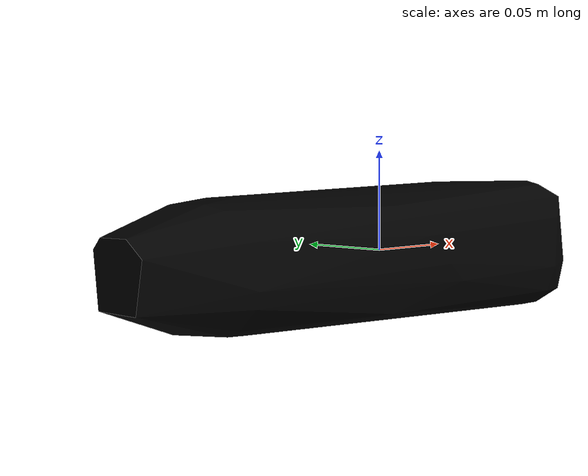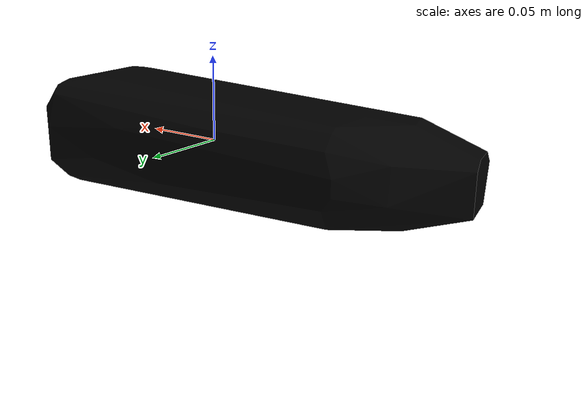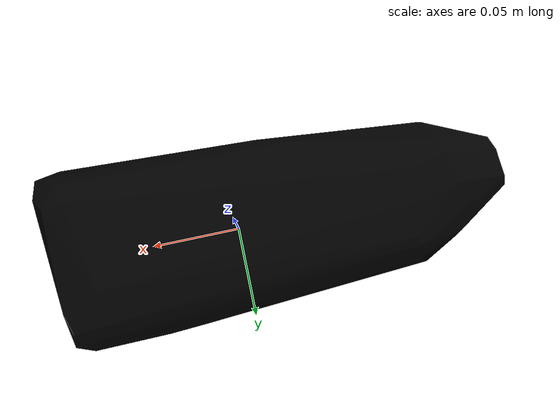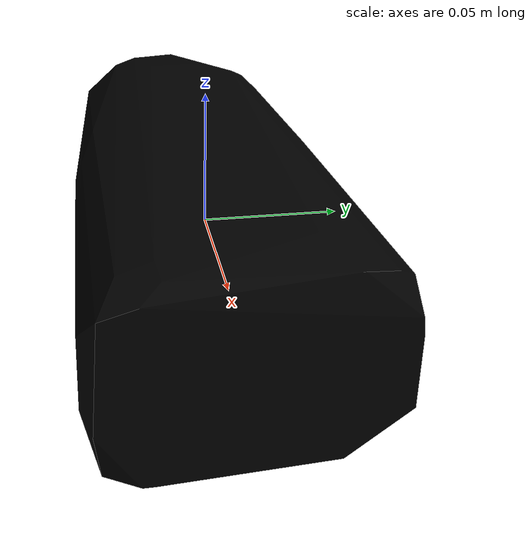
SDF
<?xml version="1.0"?>
<sdf version="1.4">
  <model name="021_bleach_cleanser_textured">
    <pose>0 0 0  0 0 0</pose>
    <link name="body">
      <inertial>
        <mass> 1.0 </mass>
        <pose>0 0 0 0 0 0</pose>
        <inertia>
          <ixx>0.0007870626198655923</ixx>
          <ixy>0.0</ixy>
          <ixz>0.0</ixz>
          <iyy>0.00437241781154122</iyy>
          <iyz>0.0</iyz>
          <izz>0.004696010859343187</izz>
        </inertia>
      </inertial>
      <visual name="visual">
        <geometry>
          <mesh>
            <uri>model://021_bleach_cleanser_textured/textured.dae</uri>
          </mesh>
        </geometry>
        <pose>0.0982351076681116 0.024241808195761157 0.011383814518668838 -1.5706837877611852 0.010427134539484122 1.6413280527963843</pose>
      </visual>
      <collision name="collision">
        <geometry>
          <mesh>
            <uri>model://021_bleach_cleanser_textured/textured.col.dae</uri>
          </mesh>
        </geometry>
        <max_contacts>10</max_contacts>
        <surface>
          <friction>
            <ode>
              <mu>0.8</mu>
              <mu2>0.8</mu2>
              <slip1>0</slip1>
              <slip2>0</slip2>
            </ode>
            <torsional>
              <ode/>
            </torsional>
          </friction>
          <contact>
            <ode>
              <kp>1000000.0</kp>
              <kd>1.0</kd>
              <max_vel>0.0</max_vel>
            </ode>
          </contact>
        </surface>
        <pose>0.0982351076681116 0.024241808195761157 0.011383814518668838 -1.5706837877611852 0.010427134539484122 1.6413280527963843</pose>
      </collision>
    </link>
  </model>
</sdf>
